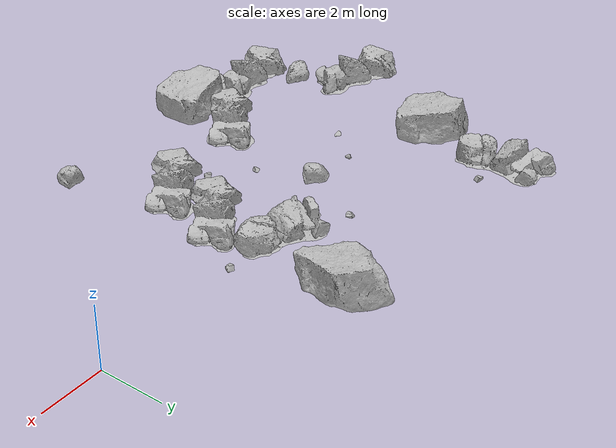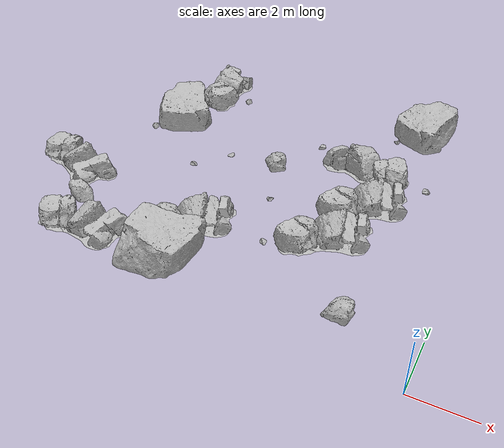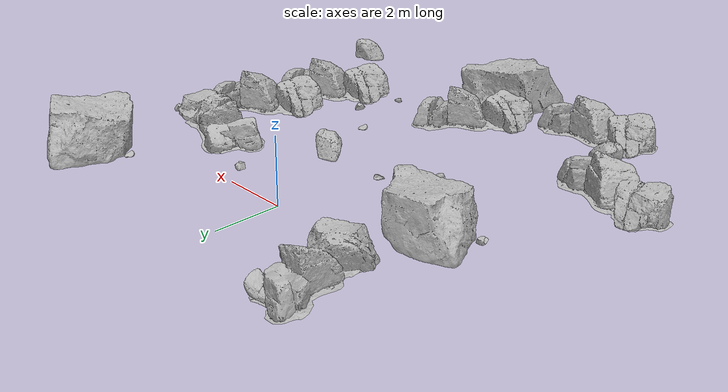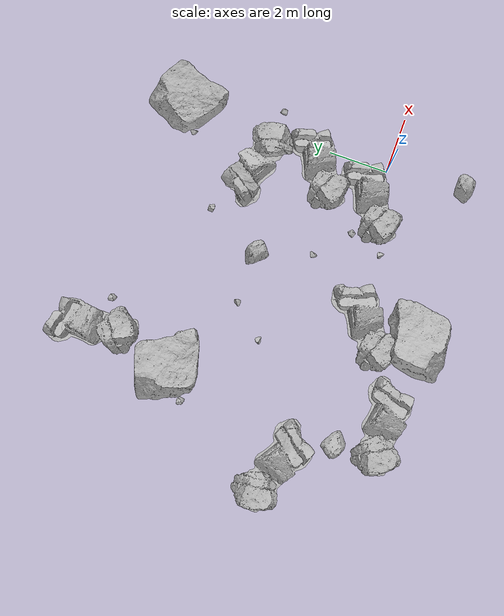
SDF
<sdf version="1.7">
 <world name="marsyard">
  <model name="Rock_15">
   <static>true</static>
   <pose>-3.9417 -0.4002 4.0000 0.0000 0.0000 -1.1793</pose>
   <link name="link">
    <visual name="visual">
     <geometry><mesh><uri>package://rock_generator/rocks_ws/rock_7/meshes/rock_7.stl</uri></mesh></geometry>
    </visual>
    <collision name="collision">
     <geometry><mesh><uri>package://rock_generator/rocks_ws/rock_7/meshes/rock_7.stl</uri></mesh></geometry>
    </collision>
   </link>
  </model>
  <model name="Rock_39">
   <static>true</static>
   <pose>-5.8300 -1.8492 4.0000 0.0000 0.0000 -0.8173</pose>
   <link name="link">
    <visual name="visual">
     <geometry><mesh><uri>package://rock_generator/rocks_ws/rock_1/meshes/rock_1.stl</uri></mesh></geometry>
    </visual>
    <collision name="collision">
     <geometry><mesh><uri>package://rock_generator/rocks_ws/rock_1/meshes/rock_1.stl</uri></mesh></geometry>
    </collision>
   </link>
  </model>
  <model name="Rock_56">
   <static>true</static>
   <pose>-2.6793 0.2716 4.0000 0.0000 0.0000 0.6195</pose>
   <link name="link">
    <visual name="visual">
     <geometry><mesh><uri>package://rock_generator/rocks_ws/rock_2/meshes/rock_2.stl</uri></mesh></geometry>
    </visual>
    <collision name="collision">
     <geometry><mesh><uri>package://rock_generator/rocks_ws/rock_2/meshes/rock_2.stl</uri></mesh></geometry>
    </collision>
   </link>
  </model>
  <model name="Rock_60">
   <static>true</static>
   <pose>-9.3885 3.1634 4.0000 0.0000 0.0000 -2.7937</pose>
   <link name="link">
    <visual name="visual">
     <geometry><mesh><uri>package://rock_generator/rocks_ws/rock_9/meshes/rock_9.stl</uri></mesh></geometry>
    </visual>
    <collision name="collision">
     <geometry><mesh><uri>package://rock_generator/rocks_ws/rock_9/meshes/rock_9.stl</uri></mesh></geometry>
    </collision>
   </link>
  </model>
  <model name="Rock_63">
   <static>true</static>
   <pose>-5.9303 -0.6999 4.0000 0.0000 0.0000 0.7273</pose>
   <link name="link">
    <visual name="visual">
     <geometry><mesh><uri>package://rock_generator/rocks_ws/rock_2/meshes/rock_2.stl</uri></mesh></geometry>
    </visual>
    <collision name="collision">
     <geometry><mesh><uri>package://rock_generator/rocks_ws/rock_2/meshes/rock_2.stl</uri></mesh></geometry>
    </collision>
   </link>
  </model>
  <model name="Rock_64">
   <static>true</static>
   <pose>-1.4319 -1.8924 4.0000 0.0000 0.0000 0.9817</pose>
   <link name="link">
    <visual name="visual">
     <geometry><mesh><uri>package://rock_generator/rocks_ws/rock_3/meshes/rock_3.stl</uri></mesh></geometry>
    </visual>
    <collision name="collision">
     <geometry><mesh><uri>package://rock_generator/rocks_ws/rock_3/meshes/rock_3.stl</uri></mesh></geometry>
    </collision>
   </link>
  </model>
  <model name="Rock_69">
   <static>true</static>
   <pose>-8.5305 3.8011 4.0000 0.0000 0.0000 -1.9772</pose>
   <link name="link">
    <visual name="visual">
     <geometry><mesh><uri>package://rock_generator/rocks_ws/rock_1/meshes/rock_1.stl</uri></mesh></geometry>
    </visual>
    <collision name="collision">
     <geometry><mesh><uri>package://rock_generator/rocks_ws/rock_1/meshes/rock_1.stl</uri></mesh></geometry>
    </collision>
   </link>
  </model>
  <model name="Rock_74">
   <static>true</static>
   <pose>-8.3867 5.9427 4.0000 0.0000 0.0000 1.7308</pose>
   <link name="link">
    <visual name="visual">
     <geometry><mesh><uri>package://rock_generator/rocks_ws/rock_2/meshes/rock_2.stl</uri></mesh></geometry>
    </visual>
    <collision name="collision">
     <geometry><mesh><uri>package://rock_generator/rocks_ws/rock_2/meshes/rock_2.stl</uri></mesh></geometry>
    </collision>
   </link>
  </model>
  <model name="Rock_104">
   <static>true</static>
   <pose>-7.2279 1.8346 4.0000 0.0000 0.0000 -0.4660</pose>
   <link name="link">
    <visual name="visual">
     <geometry><mesh><uri>package://rock_generator/rocks_ws/rock_7/meshes/rock_7.stl</uri></mesh></geometry>
    </visual>
    <collision name="collision">
     <geometry><mesh><uri>package://rock_generator/rocks_ws/rock_7/meshes/rock_7.stl</uri></mesh></geometry>
    </collision>
   </link>
  </model>
  <model name="Rock_173">
   <static>true</static>
   <pose>-1.6090 5.8977 4.0000 0.0000 0.0000 -2.8611</pose>
   <link name="link">
    <visual name="visual">
     <geometry><mesh><uri>package://rock_generator/rocks_ws/rock_1/meshes/rock_1.stl</uri></mesh></geometry>
    </visual>
    <collision name="collision">
     <geometry><mesh><uri>package://rock_generator/rocks_ws/rock_1/meshes/rock_1.stl</uri></mesh></geometry>
    </collision>
   </link>
  </model>
  <model name="Rock_179">
   <static>true</static>
   <pose>-0.9780 3.4258 4.0000 0.0000 0.0000 -1.3768</pose>
   <link name="link">
    <visual name="visual">
     <geometry><mesh><uri>package://rock_generator/rocks_ws/rock_9/meshes/rock_9.stl</uri></mesh></geometry>
    </visual>
    <collision name="collision">
     <geometry><mesh><uri>package://rock_generator/rocks_ws/rock_9/meshes/rock_9.stl</uri></mesh></geometry>
    </collision>
   </link>
  </model>
  <model name="Rock_188">
   <static>true</static>
   <pose>-4.5615 1.2668 4.0000 0.0000 0.0000 0.6734</pose>
   <link name="link">
    <visual name="visual">
     <geometry><mesh><uri>package://rock_generator/rocks_ws/rock_7/meshes/rock_7.stl</uri></mesh></geometry>
    </visual>
    <collision name="collision">
     <geometry><mesh><uri>package://rock_generator/rocks_ws/rock_7/meshes/rock_7.stl</uri></mesh></geometry>
    </collision>
   </link>
  </model>
  <model name="Rock_218">
   <static>true</static>
   <pose>-8.2692 -1.8968 4.0000 0.0000 0.0000 0.0553</pose>
   <link name="link">
    <visual name="visual">
     <geometry><mesh><uri>package://rock_generator/rocks_ws/rock_2/meshes/rock_2.stl</uri></mesh></geometry>
    </visual>
    <collision name="collision">
     <geometry><mesh><uri>package://rock_generator/rocks_ws/rock_2/meshes/rock_2.stl</uri></mesh></geometry>
    </collision>
   </link>
  </model>
  <model name="Rock_294">
   <static>true</static>
   <pose>-2.6051 3.5471 4.0000 0.0000 0.0000 2.8929</pose>
   <link name="link">
    <visual name="visual">
     <geometry><mesh><uri>package://rock_generator/rocks_ws/rock_2/meshes/rock_2.stl</uri></mesh></geometry>
    </visual>
    <collision name="collision">
     <geometry><mesh><uri>package://rock_generator/rocks_ws/rock_2/meshes/rock_2.stl</uri></mesh></geometry>
    </collision>
   </link>
  </model>
  <model name="Rock_311">
   <static>true</static>
   <pose>-2.4202 5.5562 4.0000 0.0000 0.0000 1.1369</pose>
   <link name="link">
    <visual name="visual">
     <geometry><mesh><uri>package://rock_generator/rocks_ws/rock_7/meshes/rock_7.stl</uri></mesh></geometry>
    </visual>
    <collision name="collision">
     <geometry><mesh><uri>package://rock_generator/rocks_ws/rock_7/meshes/rock_7.stl</uri></mesh></geometry>
    </collision>
   </link>
  </model>
  <model name="Rock_338">
   <static>true</static>
   <pose>-5.0719 2.7478 4.0000 0.0000 0.0000 0.2088</pose>
   <link name="link">
    <visual name="visual">
     <geometry><mesh><uri>package://rock_generator/rocks_ws/rock_3/meshes/rock_3.stl</uri></mesh></geometry>
    </visual>
    <collision name="collision">
     <geometry><mesh><uri>package://rock_generator/rocks_ws/rock_3/meshes/rock_3.stl</uri></mesh></geometry>
    </collision>
   </link>
  </model>
  <model name="Rock_353">
   <static>true</static>
   <pose>-3.7307 3.5228 4.0000 0.0000 0.0000 0.4416</pose>
   <link name="link">
    <visual name="visual">
     <geometry><mesh><uri>package://rock_generator/rocks_ws/rock_9/meshes/rock_9.stl</uri></mesh></geometry>
    </visual>
    <collision name="collision">
     <geometry><mesh><uri>package://rock_generator/rocks_ws/rock_9/meshes/rock_9.stl</uri></mesh></geometry>
    </collision>
   </link>
  </model>
  <model name="Rock_375">
   <static>true</static>
   <pose>-4.2973 4.2948 4.0000 0.0000 0.0000 0.5046</pose>
   <link name="link">
    <visual name="visual">
     <geometry><mesh><uri>package://rock_generator/rocks_ws/rock_9/meshes/rock_9.stl</uri></mesh></geometry>
    </visual>
    <collision name="collision">
     <geometry><mesh><uri>package://rock_generator/rocks_ws/rock_9/meshes/rock_9.stl</uri></mesh></geometry>
    </collision>
   </link>
  </model>
  <model name="Rock_387">
   <static>true</static>
   <pose>-10.1446 0.3676 4.0000 0.0000 0.0000 -0.3347</pose>
   <link name="link">
    <visual name="visual">
     <geometry><mesh><uri>package://rock_generator/rocks_ws/rock_2/meshes/rock_2.stl</uri></mesh></geometry>
    </visual>
    <collision name="collision">
     <geometry><mesh><uri>package://rock_generator/rocks_ws/rock_2/meshes/rock_2.stl</uri></mesh></geometry>
    </collision>
   </link>
  </model>
  <model name="Rock_402">
   <static>true</static>
   <pose>-9.0192 -0.9219 4.0000 0.0000 0.0000 -2.6306</pose>
   <link name="link">
    <visual name="visual">
     <geometry><mesh><uri>package://rock_generator/rocks_ws/rock_3/meshes/rock_3.stl</uri></mesh></geometry>
    </visual>
    <collision name="collision">
     <geometry><mesh><uri>package://rock_generator/rocks_ws/rock_3/meshes/rock_3.stl</uri></mesh></geometry>
    </collision>
   </link>
  </model>
  <model name="Rock_415">
   <static>true</static>
   <pose>-7.5242 5.8480 4.0000 0.0000 0.0000 -3.0129</pose>
   <link name="link">
    <visual name="visual">
     <geometry><mesh><uri>package://rock_generator/rocks_ws/rock_9/meshes/rock_9.stl</uri></mesh></geometry>
    </visual>
    <collision name="collision">
     <geometry><mesh><uri>package://rock_generator/rocks_ws/rock_9/meshes/rock_9.stl</uri></mesh></geometry>
    </collision>
   </link>
  </model>
  <model name="Rock_419">
   <static>true</static>
   <pose>-6.4678 2.7089 4.0000 0.0000 0.0000 -2.8460</pose>
   <link name="link">
    <visual name="visual">
     <geometry><mesh><uri>package://rock_generator/rocks_ws/rock_7/meshes/rock_7.stl</uri></mesh></geometry>
    </visual>
    <collision name="collision">
     <geometry><mesh><uri>package://rock_generator/rocks_ws/rock_7/meshes/rock_7.stl</uri></mesh></geometry>
    </collision>
   </link>
  </model>
  <model name="Rock_447">
   <static>true</static>
   <pose>-3.6386 0.5110 4.0000 0.0000 0.0000 -1.8181</pose>
   <link name="link">
    <visual name="visual">
     <geometry><mesh><uri>package://rock_generator/rocks_ws/rock_9/meshes/rock_9.stl</uri></mesh></geometry>
    </visual>
    <collision name="collision">
     <geometry><mesh><uri>package://rock_generator/rocks_ws/rock_9/meshes/rock_9.stl</uri></mesh></geometry>
    </collision>
   </link>
  </model>
  <model name="Rock_452">
   <static>true</static>
   <pose>-2.2672 1.9027 4.0000 0.0000 0.0000 0.6631</pose>
   <link name="link">
    <visual name="visual">
     <geometry><mesh><uri>package://rock_generator/rocks_ws/rock_2/meshes/rock_2.stl</uri></mesh></geometry>
    </visual>
    <collision name="collision">
     <geometry><mesh><uri>package://rock_generator/rocks_ws/rock_2/meshes/rock_2.stl</uri></mesh></geometry>
    </collision>
   </link>
  </model>
 </world>
</sdf>
